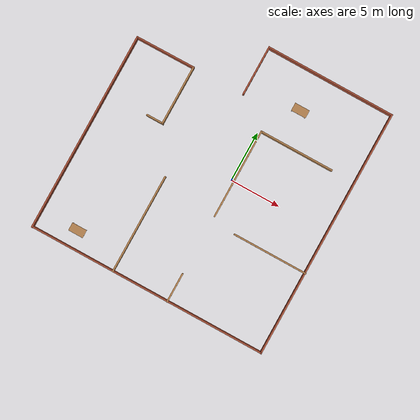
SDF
<?xml version='1.0'?>
<sdf version='1.6'>
  <model name='mybuilding'>
    <link name='Wall_1'>
      <pose frame=''>-13.9101 -2.63838 0 0 0 -1.5708</pose>
      <self_collide>0</self_collide>
      <enable_wind>0</enable_wind>
      <kinematic>0</kinematic>
      <gravity>1</gravity>
      <inertial>
        <mass>1</mass>
        <pose frame=''>0 0 0 0 -0 0</pose>
        <inertia>
          <ixx>1</ixx>
          <ixy>0</ixy>
          <ixz>0</ixz>
          <iyy>1</iyy>
          <iyz>0</iyz>
          <izz>1</izz>
        </inertia>
      </inertial>
      <visual name='Wall_1_Visual'>
        <pose frame=''>0 0 0.625 0 -0 0</pose>
        <geometry>
          <box>
            <size>20 0.15 1.25</size>
          </box>
        </geometry>
        <material>
          <script>
            <uri>file://media/materials/scripts/gazebo.material</uri>
            <name>Gazebo/Bricks</name>
          </script>
          <ambient>0.761 0.663 0.627 1</ambient>
          <shader type='pixel'>
            <normal_map>__default__</normal_map>
          </shader>
          <diffuse>1 1 1 1</diffuse>
          <specular>0.2 0.2 0.2 1</specular>
          <emissive>0 0 0 1</emissive>
        </material>
        <meta>
          <layer>0</layer>
        </meta>
        <transparency>0</transparency>
        <cast_shadows>1</cast_shadows>
      </visual>
      <collision name='Wall_1_Collision'>
        <laser_retro>0</laser_retro>
        <max_contacts>10</max_contacts>
        <pose frame=''>0 0 0.625 0 -0 0</pose>
        <geometry>
          <box>
            <size>20 0.15 1.25</size>
          </box>
        </geometry>
        <surface>
          <friction>
            <ode>
              <mu>1</mu>
              <mu2>1</mu2>
              <fdir1>0 0 0</fdir1>
              <slip1>0</slip1>
              <slip2>0</slip2>
            </ode>
            <torsional>
              <coefficient>1</coefficient>
              <patch_radius>0</patch_radius>
              <surface_radius>0</surface_radius>
              <use_patch_radius>1</use_patch_radius>
              <ode>
                <slip>0</slip>
              </ode>
            </torsional>
          </friction>
          <bounce>
            <restitution_coefficient>0</restitution_coefficient>
            <threshold>1e+06</threshold>
          </bounce>
          <contact>
            <collide_without_contact>0</collide_without_contact>
            <collide_without_contact_bitmask>1</collide_without_contact_bitmask>
            <collide_bitmask>1</collide_bitmask>
            <ode>
              <soft_cfm>0</soft_cfm>
              <soft_erp>0.2</soft_erp>
              <kp>1e+13</kp>
              <kd>1</kd>
              <max_vel>0.01</max_vel>
              <min_depth>0</min_depth>
            </ode>
            <bullet>
              <split_impulse>1</split_impulse>
              <split_impulse_penetration_threshold>-0.01</split_impulse_penetration_threshold>
              <soft_cfm>0</soft_cfm>
              <soft_erp>0.2</soft_erp>
              <kp>1e+13</kp>
              <kd>1</kd>
            </bullet>
          </contact>
        </surface>
      </collision>
    </link>
    <link name='Wall_15'>
      <pose frame=''>-10.9774 7.33262 0 0 -0 0.008333</pose>
      <self_collide>0</self_collide>
      <enable_wind>0</enable_wind>
      <kinematic>0</kinematic>
      <gravity>1</gravity>
      <inertial>
        <mass>1</mass>
        <pose frame=''>0 0 0 0 -0 0</pose>
        <inertia>
          <ixx>1</ixx>
          <ixy>0</ixy>
          <ixz>0</ixz>
          <iyy>1</iyy>
          <iyz>0</iyz>
          <izz>1</izz>
        </inertia>
      </inertial>
      <visual name='Wall_15_Visual'>
        <pose frame=''>0 0 0.625 0 -0 0</pose>
        <geometry>
          <box>
            <size>6 0.15 1.25</size>
          </box>
        </geometry>
        <material>
          <script>
            <uri>file://media/materials/scripts/gazebo.material</uri>
            <name>Gazebo/Bricks</name>
          </script>
          <ambient>0.761 0.663 0.627 1</ambient>
          <shader type='pixel'>
            <normal_map>__default__</normal_map>
          </shader>
          <diffuse>1 1 1 1</diffuse>
          <specular>0.2 0.2 0.2 1</specular>
          <emissive>0 0 0 1</emissive>
        </material>
        <meta>
          <layer>0</layer>
        </meta>
        <transparency>0</transparency>
        <cast_shadows>1</cast_shadows>
      </visual>
      <collision name='Wall_15_Collision'>
        <laser_retro>0</laser_retro>
        <max_contacts>10</max_contacts>
        <pose frame=''>0 0 0.625 0 -0 0</pose>
        <geometry>
          <box>
            <size>6 0.15 1.25</size>
          </box>
        </geometry>
        <surface>
          <friction>
            <ode>
              <mu>1</mu>
              <mu2>1</mu2>
              <fdir1>0 0 0</fdir1>
              <slip1>0</slip1>
              <slip2>0</slip2>
            </ode>
            <torsional>
              <coefficient>1</coefficient>
              <patch_radius>0</patch_radius>
              <surface_radius>0</surface_radius>
              <use_patch_radius>1</use_patch_radius>
              <ode>
                <slip>0</slip>
              </ode>
            </torsional>
          </friction>
          <bounce>
            <restitution_coefficient>0</restitution_coefficient>
            <threshold>1e+06</threshold>
          </bounce>
          <contact>
            <collide_without_contact>0</collide_without_contact>
            <collide_without_contact_bitmask>1</collide_without_contact_bitmask>
            <collide_bitmask>1</collide_bitmask>
            <ode>
              <soft_cfm>0</soft_cfm>
              <soft_erp>0.2</soft_erp>
              <kp>1e+13</kp>
              <kd>1</kd>
              <max_vel>0.01</max_vel>
              <min_depth>0</min_depth>
            </ode>
            <bullet>
              <split_impulse>1</split_impulse>
              <split_impulse_penetration_threshold>-0.01</split_impulse_penetration_threshold>
              <soft_cfm>0</soft_cfm>
              <soft_erp>0.2</soft_erp>
              <kp>1e+13</kp>
              <kd>1</kd>
            </bullet>
          </contact>
        </surface>
      </collision>
    </link>
    <link name='Wall_19'>
      <pose frame=''>3.901 5.21378 0 0 -0 0</pose>
      <self_collide>0</self_collide>
      <enable_wind>0</enable_wind>
      <kinematic>0</kinematic>
      <gravity>1</gravity>
      <inertial>
        <mass>1</mass>
        <pose frame=''>0 0 0 0 -0 0</pose>
        <inertia>
          <ixx>1</ixx>
          <ixy>0</ixy>
          <ixz>0</ixz>
          <iyy>1</iyy>
          <iyz>0</iyz>
          <izz>1</izz>
        </inertia>
      </inertial>
      <visual name='Wall_19_Visual'>
        <pose frame=''>0 0 0.625 0 -0 0</pose>
        <geometry>
          <box>
            <size>7.5 0.15 1.25</size>
          </box>
        </geometry>
        <material>
          <script>
            <uri>file://media/materials/scripts/gazebo.material</uri>
            <name>Gazebo/Wood</name>
          </script>
          <ambient>0.761 0.663 0.627 1</ambient>
          <shader type='pixel'>
            <normal_map>__default__</normal_map>
          </shader>
          <diffuse>1 1 1 1</diffuse>
          <specular>0.2 0.2 0.2 1</specular>
          <emissive>0 0 0 1</emissive>
        </material>
        <meta>
          <layer>0</layer>
        </meta>
        <transparency>0</transparency>
        <cast_shadows>1</cast_shadows>
      </visual>
      <collision name='Wall_19_Collision'>
        <laser_retro>0</laser_retro>
        <max_contacts>10</max_contacts>
        <pose frame=''>0 0 0.625 0 -0 0</pose>
        <geometry>
          <box>
            <size>7.5 0.15 1.25</size>
          </box>
        </geometry>
        <surface>
          <friction>
            <ode>
              <mu>1</mu>
              <mu2>1</mu2>
              <fdir1>0 0 0</fdir1>
              <slip1>0</slip1>
              <slip2>0</slip2>
            </ode>
            <torsional>
              <coefficient>1</coefficient>
              <patch_radius>0</patch_radius>
              <surface_radius>0</surface_radius>
              <use_patch_radius>1</use_patch_radius>
              <ode>
                <slip>0</slip>
              </ode>
            </torsional>
          </friction>
          <bounce>
            <restitution_coefficient>0</restitution_coefficient>
            <threshold>1e+06</threshold>
          </bounce>
          <contact>
            <collide_without_contact>0</collide_without_contact>
            <collide_without_contact_bitmask>1</collide_without_contact_bitmask>
            <collide_bitmask>1</collide_bitmask>
            <ode>
              <soft_cfm>0</soft_cfm>
              <soft_erp>0.2</soft_erp>
              <kp>1e+13</kp>
              <kd>1</kd>
              <max_vel>0.01</max_vel>
              <min_depth>0</min_depth>
            </ode>
            <bullet>
              <split_impulse>1</split_impulse>
              <split_impulse_penetration_threshold>-0.01</split_impulse_penetration_threshold>
              <soft_cfm>0</soft_cfm>
              <soft_erp>0.2</soft_erp>
              <kp>1e+13</kp>
              <kd>1</kd>
            </bullet>
          </contact>
        </surface>
      </collision>
    </link>
    <link name='Wall_2'>
      <pose frame=''>-1.93297 -12.5353 0 0 -0 0</pose>
      <self_collide>0</self_collide>
      <enable_wind>0</enable_wind>
      <kinematic>0</kinematic>
      <gravity>1</gravity>
      <inertial>
        <mass>1</mass>
        <pose frame=''>0 0 0 0 -0 0</pose>
        <inertia>
          <ixx>1</ixx>
          <ixy>0</ixy>
          <ixz>0</ixz>
          <iyy>1</iyy>
          <iyz>0</iyz>
          <izz>1</izz>
        </inertia>
      </inertial>
      <visual name='Wall_2_Visual'>
        <pose frame=''>0 0 0.625 0 -0 0</pose>
        <geometry>
          <box>
            <size>24 0.15 1.25</size>
          </box>
        </geometry>
        <material>
          <script>
            <uri>file://media/materials/scripts/gazebo.material</uri>
            <name>Gazebo/Bricks</name>
          </script>
          <ambient>0.761 0.663 0.627 1</ambient>
          <shader type='pixel'>
            <normal_map>__default__</normal_map>
          </shader>
          <diffuse>1 1 1 1</diffuse>
          <specular>0.2 0.2 0.2 1</specular>
          <emissive>0 0 0 1</emissive>
        </material>
        <meta>
          <layer>0</layer>
        </meta>
        <transparency>0</transparency>
        <cast_shadows>1</cast_shadows>
      </visual>
      <collision name='Wall_2_Collision'>
        <laser_retro>0</laser_retro>
        <max_contacts>10</max_contacts>
        <pose frame=''>0 0 0.625 0 -0 0</pose>
        <geometry>
          <box>
            <size>24 0.15 1.25</size>
          </box>
        </geometry>
        <surface>
          <friction>
            <ode>
              <mu>1</mu>
              <mu2>1</mu2>
              <fdir1>0 0 0</fdir1>
              <slip1>0</slip1>
              <slip2>0</slip2>
            </ode>
            <torsional>
              <coefficient>1</coefficient>
              <patch_radius>0</patch_radius>
              <surface_radius>0</surface_radius>
              <use_patch_radius>1</use_patch_radius>
              <ode>
                <slip>0</slip>
              </ode>
            </torsional>
          </friction>
          <bounce>
            <restitution_coefficient>0</restitution_coefficient>
            <threshold>1e+06</threshold>
          </bounce>
          <contact>
            <collide_without_contact>0</collide_without_contact>
            <collide_without_contact_bitmask>1</collide_without_contact_bitmask>
            <collide_bitmask>1</collide_bitmask>
            <ode>
              <soft_cfm>0</soft_cfm>
              <soft_erp>0.2</soft_erp>
              <kp>1e+13</kp>
              <kd>1</kd>
              <max_vel>0.01</max_vel>
              <min_depth>0</min_depth>
            </ode>
            <bullet>
              <split_impulse>1</split_impulse>
              <split_impulse_penetration_threshold>-0.01</split_impulse_penetration_threshold>
              <soft_cfm>0</soft_cfm>
              <soft_erp>0.2</soft_erp>
              <kp>1e+13</kp>
              <kd>1</kd>
            </bullet>
          </contact>
        </surface>
      </collision>
    </link>
    <link name='Wall_21'>
      <pose frame=''>0.236472 0.787438 -0 0 0 -1.5708</pose>
      <self_collide>0</self_collide>
      <enable_wind>0</enable_wind>
      <kinematic>0</kinematic>
      <gravity>1</gravity>
      <inertial>
        <mass>1</mass>
        <pose frame=''>0 0 0 0 -0 0</pose>
        <inertia>
          <ixx>1</ixx>
          <ixy>0</ixy>
          <ixz>0</ixz>
          <iyy>1</iyy>
          <iyz>0</iyz>
          <izz>1</izz>
        </inertia>
      </inertial>
      <visual name='Wall_21_Visual'>
        <pose frame=''>0 0 0.625 0 -0 0</pose>
        <geometry>
          <box>
            <size>9 0.15 1.25</size>
          </box>
        </geometry>
        <material>
          <script>
            <uri>file://media/materials/scripts/gazebo.material</uri>
            <name>Gazebo/Wood</name>
          </script>
          <ambient>0.761 0.663 0.627 1</ambient>
          <shader type='pixel'>
            <normal_map>__default__</normal_map>
          </shader>
          <diffuse>1 1 1 1</diffuse>
          <specular>0.2 0.2 0.2 1</specular>
          <emissive>0 0 0 1</emissive>
        </material>
        <meta>
          <layer>0</layer>
        </meta>
        <transparency>0</transparency>
        <cast_shadows>1</cast_shadows>
      </visual>
      <collision name='Wall_21_Collision'>
        <laser_retro>0</laser_retro>
        <max_contacts>10</max_contacts>
        <pose frame=''>0 0 0.625 0 -0 0</pose>
        <geometry>
          <box>
            <size>9 0.15 1.25</size>
          </box>
        </geometry>
        <surface>
          <friction>
            <ode>
              <mu>1</mu>
              <mu2>1</mu2>
              <fdir1>0 0 0</fdir1>
              <slip1>0</slip1>
              <slip2>0</slip2>
            </ode>
            <torsional>
              <coefficient>1</coefficient>
              <patch_radius>0</patch_radius>
              <surface_radius>0</surface_radius>
              <use_patch_radius>1</use_patch_radius>
              <ode>
                <slip>0</slip>
              </ode>
            </torsional>
          </friction>
          <bounce>
            <restitution_coefficient>0</restitution_coefficient>
            <threshold>1e+06</threshold>
          </bounce>
          <contact>
            <collide_without_contact>0</collide_without_contact>
            <collide_without_contact_bitmask>1</collide_without_contact_bitmask>
            <collide_bitmask>1</collide_bitmask>
            <ode>
              <soft_cfm>0</soft_cfm>
              <soft_erp>0.2</soft_erp>
              <kp>1e+13</kp>
              <kd>1</kd>
              <max_vel>0.01</max_vel>
              <min_depth>0</min_depth>
            </ode>
            <bullet>
              <split_impulse>1</split_impulse>
              <split_impulse_penetration_threshold>-0.01</split_impulse_penetration_threshold>
              <soft_cfm>0</soft_cfm>
              <soft_erp>0.2</soft_erp>
              <kp>1e+13</kp>
              <kd>1</kd>
            </bullet>
          </contact>
        </surface>
      </collision>
    </link>
    <link name='Wall_22'>
      <pose frame=''>6.34322 -4.22149 0 0 -0 0</pose>
      <self_collide>0</self_collide>
      <enable_wind>0</enable_wind>
      <kinematic>0</kinematic>
      <gravity>1</gravity>
      <inertial>
        <mass>1</mass>
        <pose frame=''>0 0 0 0 -0 0</pose>
        <inertia>
          <ixx>1</ixx>
          <ixy>0</ixy>
          <ixz>0</ixz>
          <iyy>1</iyy>
          <iyz>0</iyz>
          <izz>1</izz>
        </inertia>
      </inertial>
      <visual name='Wall_22_Visual'>
        <pose frame=''>0 0 0.625 0 -0 0</pose>
        <geometry>
          <box>
            <size>7.5 0.15 1.25</size>
          </box>
        </geometry>
        <material>
          <script>
            <uri>file://media/materials/scripts/gazebo.material</uri>
            <name>Gazebo/Wood</name>
          </script>
          <ambient>0.761 0.663 0.627 1</ambient>
          <shader type='pixel'>
            <normal_map>__default__</normal_map>
          </shader>
          <diffuse>1 1 1 1</diffuse>
          <specular>0.2 0.2 0.2 1</specular>
          <emissive>0 0 0 1</emissive>
        </material>
        <meta>
          <layer>0</layer>
        </meta>
        <transparency>0</transparency>
        <cast_shadows>1</cast_shadows>
      </visual>
      <collision name='Wall_22_Collision'>
        <laser_retro>0</laser_retro>
        <max_contacts>10</max_contacts>
        <pose frame=''>0 0 0.625 0 -0 0</pose>
        <geometry>
          <box>
            <size>7.5 0.15 1.25</size>
          </box>
        </geometry>
        <surface>
          <friction>
            <ode>
              <mu>1</mu>
              <mu2>1</mu2>
              <fdir1>0 0 0</fdir1>
              <slip1>0</slip1>
              <slip2>0</slip2>
            </ode>
            <torsional>
              <coefficient>1</coefficient>
              <patch_radius>0</patch_radius>
              <surface_radius>0</surface_radius>
              <use_patch_radius>1</use_patch_radius>
              <ode>
                <slip>0</slip>
              </ode>
            </torsional>
          </friction>
          <bounce>
            <restitution_coefficient>0</restitution_coefficient>
            <threshold>1e+06</threshold>
          </bounce>
          <contact>
            <collide_without_contact>0</collide_without_contact>
            <collide_without_contact_bitmask>1</collide_without_contact_bitmask>
            <collide_bitmask>1</collide_bitmask>
            <ode>
              <soft_cfm>0</soft_cfm>
              <soft_erp>0.2</soft_erp>
              <kp>1e+13</kp>
              <kd>1</kd>
              <max_vel>0.01</max_vel>
              <min_depth>0</min_depth>
            </ode>
            <bullet>
              <split_impulse>1</split_impulse>
              <split_impulse_penetration_threshold>-0.01</split_impulse_penetration_threshold>
              <soft_cfm>0</soft_cfm>
              <soft_erp>0.2</soft_erp>
              <kp>1e+13</kp>
              <kd>1</kd>
            </bullet>
          </contact>
        </surface>
      </collision>
    </link>
    <link name='Wall_24'>
      <pose frame=''>0.214965 -11.15 0 0 0 -1.5708</pose>
      <self_collide>0</self_collide>
      <enable_wind>0</enable_wind>
      <kinematic>0</kinematic>
      <gravity>1</gravity>
      <inertial>
        <mass>1</mass>
        <pose frame=''>0 0 0 0 -0 0</pose>
        <inertia>
          <ixx>1</ixx>
          <ixy>0</ixy>
          <ixz>0</ixz>
          <iyy>1</iyy>
          <iyz>0</iyz>
          <izz>1</izz>
        </inertia>
      </inertial>
      <visual name='Wall_24_Visual'>
        <pose frame=''>0 0 0.625 0 -0 0</pose>
        <geometry>
          <box>
            <size>3 0.15 1.25</size>
          </box>
        </geometry>
        <material>
          <script>
            <uri>file://media/materials/scripts/gazebo.material</uri>
            <name>Gazebo/Wood</name>
          </script>
          <ambient>0.761 0.663 0.627 1</ambient>
          <shader type='pixel'>
            <normal_map>__default__</normal_map>
          </shader>
          <diffuse>1 1 1 1</diffuse>
          <specular>0.2 0.2 0.2 1</specular>
          <emissive>0 0 0 1</emissive>
        </material>
        <meta>
          <layer>0</layer>
        </meta>
        <transparency>0</transparency>
        <cast_shadows>1</cast_shadows>
      </visual>
      <collision name='Wall_24_Collision'>
        <laser_retro>0</laser_retro>
        <max_contacts>10</max_contacts>
        <pose frame=''>0 0 0.625 0 -0 0</pose>
        <geometry>
          <box>
            <size>3 0.15 1.25</size>
          </box>
        </geometry>
        <surface>
          <friction>
            <ode>
              <mu>1</mu>
              <mu2>1</mu2>
              <fdir1>0 0 0</fdir1>
              <slip1>0</slip1>
              <slip2>0</slip2>
            </ode>
            <torsional>
              <coefficient>1</coefficient>
              <patch_radius>0</patch_radius>
              <surface_radius>0</surface_radius>
              <use_patch_radius>1</use_patch_radius>
              <ode>
                <slip>0</slip>
              </ode>
            </torsional>
          </friction>
          <bounce>
            <restitution_coefficient>0</restitution_coefficient>
            <threshold>1e+06</threshold>
          </bounce>
          <contact>
            <collide_without_contact>0</collide_without_contact>
            <collide_without_contact_bitmask>1</collide_without_contact_bitmask>
            <collide_bitmask>1</collide_bitmask>
            <ode>
              <soft_cfm>0</soft_cfm>
              <soft_erp>0.2</soft_erp>
              <kp>1e+13</kp>
              <kd>1</kd>
              <max_vel>0.01</max_vel>
              <min_depth>0</min_depth>
            </ode>
            <bullet>
              <split_impulse>1</split_impulse>
              <split_impulse_penetration_threshold>-0.01</split_impulse_penetration_threshold>
              <soft_cfm>0</soft_cfm>
              <soft_erp>0.2</soft_erp>
              <kp>1e+13</kp>
              <kd>1</kd>
            </bullet>
          </contact>
        </surface>
      </collision>
    </link>
    <link name='Wall_26'>
      <pose frame=''>-5.47335 -7.62382 0 0 -0 1.5708</pose>
      <self_collide>0</self_collide>
      <enable_wind>0</enable_wind>
      <kinematic>0</kinematic>
      <gravity>1</gravity>
      <inertial>
        <mass>1</mass>
        <pose frame=''>0 0 0 0 -0 0</pose>
        <inertia>
          <ixx>1</ixx>
          <ixy>0</ixy>
          <ixz>0</ixz>
          <iyy>1</iyy>
          <iyz>0</iyz>
          <izz>1</izz>
        </inertia>
      </inertial>
      <visual name='Wall_26_Visual'>
        <pose frame=''>0 0 0.625 0 -0 0</pose>
        <geometry>
          <box>
            <size>10 0.15 1.25</size>
          </box>
        </geometry>
        <material>
          <script>
            <uri>file://media/materials/scripts/gazebo.material</uri>
            <name>Gazebo/Wood</name>
          </script>
          <ambient>0.761 0.663 0.627 1</ambient>
          <shader type='pixel'>
            <normal_map>__default__</normal_map>
          </shader>
          <diffuse>1 1 1 1</diffuse>
          <specular>0.2 0.2 0.2 1</specular>
          <emissive>0 0 0 1</emissive>
        </material>
        <meta>
          <layer>0</layer>
        </meta>
        <transparency>0</transparency>
        <cast_shadows>1</cast_shadows>
      </visual>
      <collision name='Wall_26_Collision'>
        <laser_retro>0</laser_retro>
        <max_contacts>10</max_contacts>
        <pose frame=''>0 0 0.625 0 -0 0</pose>
        <geometry>
          <box>
            <size>10 0.15 1.25</size>
          </box>
        </geometry>
        <surface>
          <friction>
            <ode>
              <mu>1</mu>
              <mu2>1</mu2>
              <fdir1>0 0 0</fdir1>
              <slip1>0</slip1>
              <slip2>0</slip2>
            </ode>
            <torsional>
              <coefficient>1</coefficient>
              <patch_radius>0</patch_radius>
              <surface_radius>0</surface_radius>
              <use_patch_radius>1</use_patch_radius>
              <ode>
                <slip>0</slip>
              </ode>
            </torsional>
          </friction>
          <bounce>
            <restitution_coefficient>0</restitution_coefficient>
            <threshold>1e+06</threshold>
          </bounce>
          <contact>
            <collide_without_contact>0</collide_without_contact>
            <collide_without_contact_bitmask>1</collide_without_contact_bitmask>
            <collide_bitmask>1</collide_bitmask>
            <ode>
              <soft_cfm>0</soft_cfm>
              <soft_erp>0.2</soft_erp>
              <kp>1e+13</kp>
              <kd>1</kd>
              <max_vel>0.01</max_vel>
              <min_depth>0</min_depth>
            </ode>
            <bullet>
              <split_impulse>1</split_impulse>
              <split_impulse_penetration_threshold>-0.01</split_impulse_penetration_threshold>
              <soft_cfm>0</soft_cfm>
              <soft_erp>0.2</soft_erp>
              <kp>1e+13</kp>
              <kd>1</kd>
            </bullet>
          </contact>
        </surface>
      </collision>
    </link>
    <link name='Wall_28'>
      <pose frame=''>-8.06143 4.43014 0 0 0 -1.5708</pose>
      <self_collide>0</self_collide>
      <enable_wind>0</enable_wind>
      <kinematic>0</kinematic>
      <gravity>1</gravity>
      <inertial>
        <mass>1</mass>
        <pose frame=''>0 0 0 0 -0 0</pose>
        <inertia>
          <ixx>1</ixx>
          <ixy>0</ixy>
          <ixz>0</ixz>
          <iyy>1</iyy>
          <iyz>0</iyz>
          <izz>1</izz>
        </inertia>
      </inertial>
      <visual name='Wall_28_Visual'>
        <pose frame=''>0 0 0.625 0 -0 0</pose>
        <geometry>
          <box>
            <size>6 0.15 1.25</size>
          </box>
        </geometry>
        <material>
          <script>
            <uri>file://media/materials/scripts/gazebo.material</uri>
            <name>Gazebo/Wood</name>
          </script>
          <ambient>0.761 0.663 0.627 1</ambient>
          <shader type='pixel'>
            <normal_map>__default__</normal_map>
          </shader>
          <diffuse>1 1 1 1</diffuse>
          <specular>0.2 0.2 0.2 1</specular>
          <emissive>0 0 0 1</emissive>
        </material>
        <meta>
          <layer>0</layer>
        </meta>
        <transparency>0</transparency>
        <cast_shadows>1</cast_shadows>
      </visual>
      <collision name='Wall_28_Collision'>
        <laser_retro>0</laser_retro>
        <max_contacts>10</max_contacts>
        <pose frame=''>0 0 0.625 0 -0 0</pose>
        <geometry>
          <box>
            <size>6 0.15 1.25</size>
          </box>
        </geometry>
        <surface>
          <friction>
            <ode>
              <mu>1</mu>
              <mu2>1</mu2>
              <fdir1>0 0 0</fdir1>
              <slip1>0</slip1>
              <slip2>0</slip2>
            </ode>
            <torsional>
              <coefficient>1</coefficient>
              <patch_radius>0</patch_radius>
              <surface_radius>0</surface_radius>
              <use_patch_radius>1</use_patch_radius>
              <ode>
                <slip>0</slip>
              </ode>
            </torsional>
          </friction>
          <bounce>
            <restitution_coefficient>0</restitution_coefficient>
            <threshold>1e+06</threshold>
          </bounce>
          <contact>
            <collide_without_contact>0</collide_without_contact>
            <collide_without_contact_bitmask>1</collide_without_contact_bitmask>
            <collide_bitmask>1</collide_bitmask>
            <ode>
              <soft_cfm>0</soft_cfm>
              <soft_erp>0.2</soft_erp>
              <kp>1e+13</kp>
              <kd>1</kd>
              <max_vel>0.01</max_vel>
              <min_depth>0</min_depth>
            </ode>
            <bullet>
              <split_impulse>1</split_impulse>
              <split_impulse_penetration_threshold>-0.01</split_impulse_penetration_threshold>
              <soft_cfm>0</soft_cfm>
              <soft_erp>0.2</soft_erp>
              <kp>1e+13</kp>
              <kd>1</kd>
            </bullet>
          </contact>
        </surface>
      </collision>
    </link>
    <link name='Wall_3'>
      <pose frame=''>9.98046 -0.118317 0 0 -0 1.5708</pose>
      <self_collide>0</self_collide>
      <enable_wind>0</enable_wind>
      <kinematic>0</kinematic>
      <gravity>1</gravity>
      <inertial>
        <mass>1</mass>
        <pose frame=''>0 0 0 0 -0 0</pose>
        <inertia>
          <ixx>1</ixx>
          <ixy>0</ixy>
          <ixz>0</ixz>
          <iyy>1</iyy>
          <iyz>0</iyz>
          <izz>1</izz>
        </inertia>
      </inertial>
      <visual name='Wall_3_Visual'>
        <pose frame=''>0 0 0.625 0 -0 0</pose>
        <geometry>
          <box>
            <size>25 0.15 1.25</size>
          </box>
        </geometry>
        <material>
          <script>
            <uri>file://media/materials/scripts/gazebo.material</uri>
            <name>Gazebo/Bricks</name>
          </script>
          <ambient>0.761 0.663 0.627 1</ambient>
          <shader type='pixel'>
            <normal_map>__default__</normal_map>
          </shader>
          <diffuse>1 1 1 1</diffuse>
          <specular>0.2 0.2 0.2 1</specular>
          <emissive>0 0 0 1</emissive>
        </material>
        <meta>
          <layer>0</layer>
        </meta>
        <transparency>0</transparency>
        <cast_shadows>1</cast_shadows>
      </visual>
      <collision name='Wall_3_Collision'>
        <laser_retro>0</laser_retro>
        <max_contacts>10</max_contacts>
        <pose frame=''>0 0 0.625 0 -0 0</pose>
        <geometry>
          <box>
            <size>25 0.15 1.25</size>
          </box>
        </geometry>
        <surface>
          <friction>
            <ode>
              <mu>1</mu>
              <mu2>1</mu2>
              <fdir1>0 0 0</fdir1>
              <slip1>0</slip1>
              <slip2>0</slip2>
            </ode>
            <torsional>
              <coefficient>1</coefficient>
              <patch_radius>0</patch_radius>
              <surface_radius>0</surface_radius>
              <use_patch_radius>1</use_patch_radius>
              <ode>
                <slip>0</slip>
              </ode>
            </torsional>
          </friction>
          <bounce>
            <restitution_coefficient>0</restitution_coefficient>
            <threshold>1e+06</threshold>
          </bounce>
          <contact>
            <collide_without_contact>0</collide_without_contact>
            <collide_without_contact_bitmask>1</collide_without_contact_bitmask>
            <collide_bitmask>1</collide_bitmask>
            <ode>
              <soft_cfm>0</soft_cfm>
              <soft_erp>0.2</soft_erp>
              <kp>1e+13</kp>
              <kd>1</kd>
              <max_vel>0.01</max_vel>
              <min_depth>0</min_depth>
            </ode>
            <bullet>
              <split_impulse>1</split_impulse>
              <split_impulse_penetration_threshold>-0.01</split_impulse_penetration_threshold>
              <soft_cfm>0</soft_cfm>
              <soft_erp>0.2</soft_erp>
              <kp>1e+13</kp>
              <kd>1</kd>
            </bullet>
          </contact>
        </surface>
      </collision>
    </link>
    <link name='Wall_30'>
      <pose frame=''>-8.84609 1.49412 -0 0 -0 0</pose>
      <self_collide>0</self_collide>
      <enable_wind>0</enable_wind>
      <kinematic>0</kinematic>
      <gravity>1</gravity>
      <inertial>
        <mass>1</mass>
        <pose frame=''>0 0 0 0 -0 0</pose>
        <inertia>
          <ixx>1</ixx>
          <ixy>0</ixy>
          <ixz>0</ixz>
          <iyy>1</iyy>
          <iyz>0</iyz>
          <izz>1</izz>
        </inertia>
      </inertial>
      <visual name='Wall_30_Visual'>
        <pose frame=''>0 0 0.625 0 -0 0</pose>
        <geometry>
          <box>
            <size>1.75 0.15 1.25</size>
          </box>
        </geometry>
        <material>
          <script>
            <uri>file://media/materials/scripts/gazebo.material</uri>
            <name>Gazebo/Wood</name>
          </script>
          <ambient>0.761 0.663 0.627 1</ambient>
          <shader type='pixel'>
            <normal_map>__default__</normal_map>
          </shader>
          <diffuse>1 1 1 1</diffuse>
          <specular>0.2 0.2 0.2 1</specular>
          <emissive>0 0 0 1</emissive>
        </material>
        <meta>
          <layer>0</layer>
        </meta>
        <transparency>0</transparency>
        <cast_shadows>1</cast_shadows>
      </visual>
      <collision name='Wall_30_Collision'>
        <laser_retro>0</laser_retro>
        <max_contacts>10</max_contacts>
        <pose frame=''>0 0 0.625 0 -0 0</pose>
        <geometry>
          <box>
            <size>1.75 0.15 1.25</size>
          </box>
        </geometry>
        <surface>
          <friction>
            <ode>
              <mu>1</mu>
              <mu2>1</mu2>
              <fdir1>0 0 0</fdir1>
              <slip1>0</slip1>
              <slip2>0</slip2>
            </ode>
            <torsional>
              <coefficient>1</coefficient>
              <patch_radius>0</patch_radius>
              <surface_radius>0</surface_radius>
              <use_patch_radius>1</use_patch_radius>
              <ode>
                <slip>0</slip>
              </ode>
            </torsional>
          </friction>
          <bounce>
            <restitution_coefficient>0</restitution_coefficient>
            <threshold>1e+06</threshold>
          </bounce>
          <contact>
            <collide_without_contact>0</collide_without_contact>
            <collide_without_contact_bitmask>1</collide_without_contact_bitmask>
            <collide_bitmask>1</collide_bitmask>
            <ode>
              <soft_cfm>0</soft_cfm>
              <soft_erp>0.2</soft_erp>
              <kp>1e+13</kp>
              <kd>1</kd>
              <max_vel>0.01</max_vel>
              <min_depth>0</min_depth>
            </ode>
            <bullet>
              <split_impulse>1</split_impulse>
              <split_impulse_penetration_threshold>-0.01</split_impulse_penetration_threshold>
              <soft_cfm>0</soft_cfm>
              <soft_erp>0.2</soft_erp>
              <kp>1e+13</kp>
              <kd>1</kd>
            </bullet>
          </contact>
        </surface>
      </collision>
    </link>
    <link name='Wall_8'>
      <pose frame=''>3.55764 12.3177 0 0 -0 3.13969</pose>
      <self_collide>0</self_collide>
      <enable_wind>0</enable_wind>
      <kinematic>0</kinematic>
      <gravity>1</gravity>
      <inertial>
        <mass>1</mass>
        <pose frame=''>0 0 0 0 -0 0</pose>
        <inertia>
          <ixx>1</ixx>
          <ixy>0</ixy>
          <ixz>0</ixz>
          <iyy>1</iyy>
          <iyz>0</iyz>
          <izz>1</izz>
        </inertia>
      </inertial>
      <visual name='Wall_8_Visual'>
        <pose frame=''>0 0 0.625 0 -0 0</pose>
        <geometry>
          <box>
            <size>13 0.15 1.25</size>
          </box>
        </geometry>
        <material>
          <script>
            <uri>file://media/materials/scripts/gazebo.material</uri>
            <name>Gazebo/Bricks</name>
          </script>
          <ambient>0.761 0.663 0.627 1</ambient>
          <shader type='pixel'>
            <normal_map>__default__</normal_map>
          </shader>
          <diffuse>1 1 1 1</diffuse>
          <specular>0.2 0.2 0.2 1</specular>
          <emissive>0 0 0 1</emissive>
        </material>
        <meta>
          <layer>0</layer>
        </meta>
        <transparency>0</transparency>
        <cast_shadows>1</cast_shadows>
      </visual>
      <collision name='Wall_8_Collision'>
        <laser_retro>0</laser_retro>
        <max_contacts>10</max_contacts>
        <pose frame=''>0 0 0.625 0 -0 0</pose>
        <geometry>
          <box>
            <size>13 0.15 1.25</size>
          </box>
        </geometry>
        <surface>
          <friction>
            <ode>
              <mu>1</mu>
              <mu2>1</mu2>
              <fdir1>0 0 0</fdir1>
              <slip1>0</slip1>
              <slip2>0</slip2>
            </ode>
            <torsional>
              <coefficient>1</coefficient>
              <patch_radius>0</patch_radius>
              <surface_radius>0</surface_radius>
              <use_patch_radius>1</use_patch_radius>
              <ode>
                <slip>0</slip>
              </ode>
            </torsional>
          </friction>
          <bounce>
            <restitution_coefficient>0</restitution_coefficient>
            <threshold>1e+06</threshold>
          </bounce>
          <contact>
            <collide_without_contact>0</collide_without_contact>
            <collide_without_contact_bitmask>1</collide_without_contact_bitmask>
            <collide_bitmask>1</collide_bitmask>
            <ode>
              <soft_cfm>0</soft_cfm>
              <soft_erp>0.2</soft_erp>
              <kp>1e+13</kp>
              <kd>1</kd>
              <max_vel>0.01</max_vel>
              <min_depth>0</min_depth>
            </ode>
            <bullet>
              <split_impulse>1</split_impulse>
              <split_impulse_penetration_threshold>-0.01</split_impulse_penetration_threshold>
              <soft_cfm>0</soft_cfm>
              <soft_erp>0.2</soft_erp>
              <kp>1e+13</kp>
              <kd>1</kd>
            </bullet>
          </contact>
        </surface>
      </collision>
    </link>
    <link name='Wall_9'>
      <pose frame=''>-2.8749 9.90579 0 0 0 -1.5708</pose>
      <self_collide>0</self_collide>
      <enable_wind>0</enable_wind>
      <kinematic>0</kinematic>
      <gravity>1</gravity>
      <inertial>
        <mass>1</mass>
        <pose frame=''>0 0 0 0 -0 0</pose>
        <inertia>
          <ixx>1</ixx>
          <ixy>0</ixy>
          <ixz>0</ixz>
          <iyy>1</iyy>
          <iyz>0</iyz>
          <izz>1</izz>
        </inertia>
      </inertial>
      <visual name='Wall_9_Visual'>
        <pose frame=''>0 0 0.625 0 -0 0</pose>
        <geometry>
          <box>
            <size>5 0.15 1.25</size>
          </box>
        </geometry>
        <material>
          <script>
            <uri>file://media/materials/scripts/gazebo.material</uri>
            <name>Gazebo/Bricks</name>
          </script>
          <ambient>0.761 0.663 0.627 1</ambient>
          <shader type='pixel'>
            <normal_map>__default__</normal_map>
          </shader>
          <diffuse>1 1 1 1</diffuse>
          <specular>0.2 0.2 0.2 1</specular>
          <emissive>0 0 0 1</emissive>
        </material>
        <meta>
          <layer>0</layer>
        </meta>
        <transparency>0</transparency>
        <cast_shadows>1</cast_shadows>
      </visual>
      <collision name='Wall_9_Collision'>
        <laser_retro>0</laser_retro>
        <max_contacts>10</max_contacts>
        <pose frame=''>0 0 0.625 0 -0 0</pose>
        <geometry>
          <box>
            <size>5 0.15 1.25</size>
          </box>
        </geometry>
        <surface>
          <friction>
            <ode>
              <mu>1</mu>
              <mu2>1</mu2>
              <fdir1>0 0 0</fdir1>
              <slip1>0</slip1>
              <slip2>0</slip2>
            </ode>
            <torsional>
              <coefficient>1</coefficient>
              <patch_radius>0</patch_radius>
              <surface_radius>0</surface_radius>
              <use_patch_radius>1</use_patch_radius>
              <ode>
                <slip>0</slip>
              </ode>
            </torsional>
          </friction>
          <bounce>
            <restitution_coefficient>0</restitution_coefficient>
            <threshold>1e+06</threshold>
          </bounce>
          <contact>
            <collide_without_contact>0</collide_without_contact>
            <collide_without_contact_bitmask>1</collide_without_contact_bitmask>
            <collide_bitmask>1</collide_bitmask>
            <ode>
              <soft_cfm>0</soft_cfm>
              <soft_erp>0.2</soft_erp>
              <kp>1e+13</kp>
              <kd>1</kd>
              <max_vel>0.01</max_vel>
              <min_depth>0</min_depth>
            </ode>
            <bullet>
              <split_impulse>1</split_impulse>
              <split_impulse_penetration_threshold>-0.01</split_impulse_penetration_threshold>
              <soft_cfm>0</soft_cfm>
              <soft_erp>0.2</soft_erp>
              <kp>1e+13</kp>
              <kd>1</kd>
            </bullet>
          </contact>
        </surface>
      </collision>
    </link>
    <model name='table'>
      <static>1</static>
      <link name='link'>
        <collision name='surface'>
          <pose frame=''>0 0 1 0 -0 0</pose>
          <geometry>
            <box>
              <size>1.5 0.8 0.03</size>
            </box>
          </geometry>
          <surface>
            <friction>
              <ode>
                <mu>0.6</mu>
                <mu2>0.6</mu2>
              </ode>
            </friction>
          </surface>
        </collision>
        <visual name='visual1'>
          <pose frame=''>0 0 1 0 -0 0</pose>
          <geometry>
            <box>
              <size>1.5 0.8 0.03</size>
            </box>
          </geometry>
          <material>
            <script>
              <uri>file://media/materials/scripts/gazebo.material</uri>
              <name>Gazebo/Wood</name>
            </script>
          </material>
        </visual>
        <collision name='front_left_leg'>
          <pose frame=''>0.68 0.38 0.5 0 -0 0</pose>
          <geometry>
            <cylinder>
              <radius>0.02</radius>
              <length>1</length>
            </cylinder>
          </geometry>
        </collision>
        <visual name='front_left_leg'>
          <pose frame=''>0.68 0.38 0.5 0 -0 0</pose>
          <geometry>
            <cylinder>
              <radius>0.02</radius>
              <length>1</length>
            </cylinder>
          </geometry>
          <material>
            <script>
              <uri>file://media/materials/scripts/gazebo.material</uri>
              <name>Gazebo/Grey</name>
            </script>
          </material>
        </visual>
        <collision name='front_right_leg'>
          <pose frame=''>0.68 -0.38 0.5 0 -0 0</pose>
          <geometry>
            <cylinder>
              <radius>0.02</radius>
              <length>1</length>
            </cylinder>
          </geometry>
        </collision>
        <visual name='front_right_leg'>
          <pose frame=''>0.68 -0.38 0.5 0 -0 0</pose>
          <geometry>
            <cylinder>
              <radius>0.02</radius>
              <length>1</length>
            </cylinder>
          </geometry>
          <material>
            <script>
              <uri>file://media/materials/scripts/gazebo.material</uri>
              <name>Gazebo/Grey</name>
            </script>
          </material>
        </visual>
        <collision name='back_right_leg'>
          <pose frame=''>-0.68 -0.38 0.5 0 -0 0</pose>
          <geometry>
            <cylinder>
              <radius>0.02</radius>
              <length>1</length>
            </cylinder>
          </geometry>
        </collision>
        <visual name='back_right_leg'>
          <pose frame=''>-0.68 -0.38 0.5 0 -0 0</pose>
          <geometry>
            <cylinder>
              <radius>0.02</radius>
              <length>1</length>
            </cylinder>
          </geometry>
          <material>
            <script>
              <uri>file://media/materials/scripts/gazebo.material</uri>
              <name>Gazebo/Grey</name>
            </script>
          </material>
        </visual>
        <collision name='back_left_leg'>
          <pose frame=''>-0.68 0.38 0.5 0 -0 0</pose>
          <geometry>
            <cylinder>
              <radius>0.02</radius>
              <length>1</length>
            </cylinder>
          </geometry>
        </collision>
        <visual name='back_left_leg'>
          <pose frame=''>-0.68 0.38 0.5 0 -0 0</pose>
          <geometry>
            <cylinder>
              <radius>0.02</radius>
              <length>1</length>
            </cylinder>
          </geometry>
          <material>
            <script>
              <uri>file://media/materials/scripts/gazebo.material</uri>
              <name>Gazebo/Grey</name>
            </script>
          </material>
        </visual>
      </link>
      <pose frame=''>-10.1248 -10.8364 0 0 -0 0</pose>
    </model>
    <model name='table_0'>
      <static>1</static>
      <link name='link'>
        <collision name='surface'>
          <pose frame=''>0 0 1 0 -0 0</pose>
          <geometry>
            <box>
              <size>1.5 0.8 0.03</size>
            </box>
          </geometry>
          <surface>
            <friction>
              <ode>
                <mu>0.6</mu>
                <mu2>0.6</mu2>
              </ode>
            </friction>
          </surface>
        </collision>
        <visual name='visual1'>
          <pose frame=''>0 0 1 0 -0 0</pose>
          <geometry>
            <box>
              <size>1.5 0.8 0.03</size>
            </box>
          </geometry>
          <material>
            <script>
              <uri>file://media/materials/scripts/gazebo.material</uri>
              <name>Gazebo/Wood</name>
            </script>
          </material>
        </visual>
        <collision name='front_left_leg'>
          <pose frame=''>0.68 0.38 0.5 0 -0 0</pose>
          <geometry>
            <cylinder>
              <radius>0.02</radius>
              <length>1</length>
            </cylinder>
          </geometry>
        </collision>
        <visual name='front_left_leg'>
          <pose frame=''>0.68 0.38 0.5 0 -0 0</pose>
          <geometry>
            <cylinder>
              <radius>0.02</radius>
              <length>1</length>
            </cylinder>
          </geometry>
          <material>
            <script>
              <uri>file://media/materials/scripts/gazebo.material</uri>
              <name>Gazebo/Grey</name>
            </script>
          </material>
        </visual>
        <collision name='front_right_leg'>
          <pose frame=''>0.68 -0.38 0.5 0 -0 0</pose>
          <geometry>
            <cylinder>
              <radius>0.02</radius>
              <length>1</length>
            </cylinder>
          </geometry>
        </collision>
        <visual name='front_right_leg'>
          <pose frame=''>0.68 -0.38 0.5 0 -0 0</pose>
          <geometry>
            <cylinder>
              <radius>0.02</radius>
              <length>1</length>
            </cylinder>
          </geometry>
          <material>
            <script>
              <uri>file://media/materials/scripts/gazebo.material</uri>
              <name>Gazebo/Grey</name>
            </script>
          </material>
        </visual>
        <collision name='back_right_leg'>
          <pose frame=''>-0.68 -0.38 0.5 0 -0 0</pose>
          <geometry>
            <cylinder>
              <radius>0.02</radius>
              <length>1</length>
            </cylinder>
          </geometry>
        </collision>
        <visual name='back_right_leg'>
          <pose frame=''>-0.68 -0.38 0.5 0 -0 0</pose>
          <geometry>
            <cylinder>
              <radius>0.02</radius>
              <length>1</length>
            </cylinder>
          </geometry>
          <material>
            <script>
              <uri>file://media/materials/scripts/gazebo.material</uri>
              <name>Gazebo/Grey</name>
            </script>
          </material>
        </visual>
        <collision name='back_left_leg'>
          <pose frame=''>-0.68 0.38 0.5 0 -0 0</pose>
          <geometry>
            <cylinder>
              <radius>0.02</radius>
              <length>1</length>
            </cylinder>
          </geometry>
        </collision>
        <visual name='back_left_leg'>
          <pose frame=''>-0.68 0.38 0.5 0 -0 0</pose>
          <geometry>
            <cylinder>
              <radius>0.02</radius>
              <length>1</length>
            </cylinder>
          </geometry>
          <material>
            <script>
              <uri>file://media/materials/scripts/gazebo.material</uri>
              <name>Gazebo/Grey</name>
            </script>
          </material>
        </visual>
      </link>
      <pose frame=''>2.43899 8.6412 0 0 -0 0</pose>
    </model>
    <static>1</static>
    <allow_auto_disable>1</allow_auto_disable>
  </model>
</sdf>
